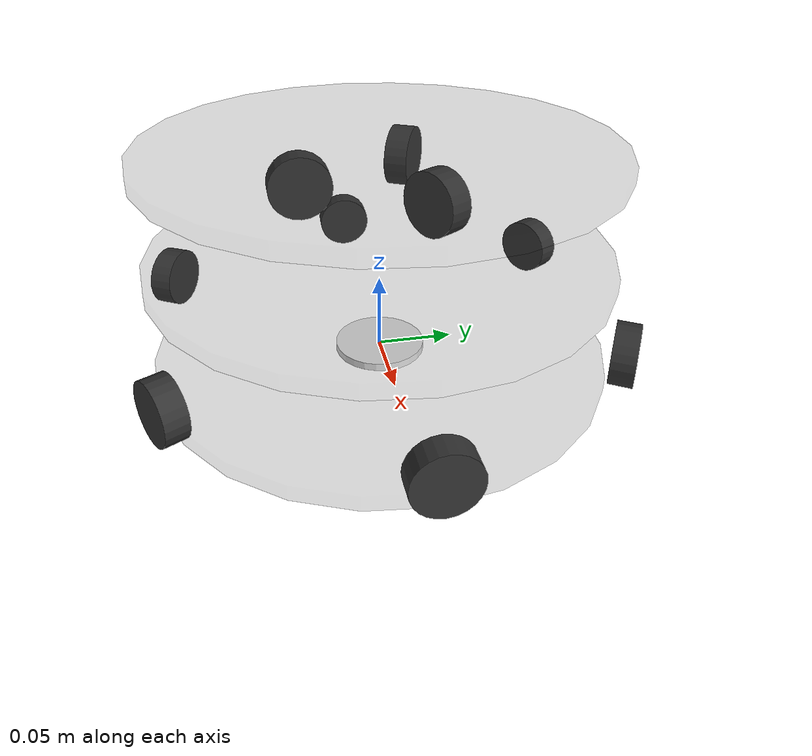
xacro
<?xml version="1.0"?>
<robot name="helix_description" xmlns:xacro="http://ros.org/wiki/xacro">

  <xacro:include filename="$(find helix_description)/urdf/helix.materials.xacro" />

  <xacro:include filename="$(find helix_description)/urdf/motor_head.xacro" />
  <xacro:include filename="$(find helix_description)/urdf/helix.ros2_control.xacro" />
  <xacro:include filename="$(find helix_description)/urdf/helix_arm.xacro"  />

  <link name="origin"/>

  <xacro:helix_ros2_control name="helix_ros2_control" />

  <xacro:motor_head parent="origin">
    <origin xyz="0 0 0" rpy="0 0 0" />
  </xacro:motor_head>

  <joint name="arm_to_origin" type="fixed">
    <origin xyz="0.0 0.0 0.0" rpy="3.1416 0 0"/>
    <parent link="origin"/>
    <child link="arm_base"/>
  </joint>

</robot>

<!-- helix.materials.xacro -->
<robot xmlns:xacro="http://www.ros.org/wiki/xacro" >

  <material name="white">
    <color rgba="1 1 1 1"/>
  </material>
  <material name="black">
    <color rgba="0.2 0.2 0.2 1.0"/>
  </material>
  <material name='clear'>
    <color rgba="0.2 0.2 0.2 0.2"/>
  </material>

</robot>

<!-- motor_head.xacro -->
<robot xmlns:xacro="http://ros.org/wiki/xacro">

<!-- URDF Representing the Helix head assembly containing the motors -->

<xacro:arg name="mesh_url" default="package://helix_description" />

<xacro:macro name="motor_head" params="parent *origin">

  <joint name="origin_to_base" type="fixed">
    <xacro:insert_block name="origin" />
    <parent link="${parent}" />
    <child link="base" />
    <axis xyz="0 0 1" />
  </joint>

  <!-- Base -->
  <link name="base">
    <visual>
      <origin xyz="0 0 0" rpy="0 0 0"/>
      <geometry>
        <cylinder length="0.01" radius="0.15"/>
      </geometry>
      <material name='clear'/>
    </visual>
    <visual>
      <origin xyz="0 0 0.07" rpy="0 0 0"/>
      <geometry>
        <cylinder length="0.01" radius="0.15"/>
      </geometry>
      <material name='clear'/>
    </visual>
     <visual>
      <origin xyz="0 0 0.14" rpy="0 0 0"/>
      <geometry>
        <cylinder length="0.01" radius="0.15"/>
      </geometry>
      <material name='clear'/>
    </visual>
  </link>

  <!-- Joint 0 -->
  <joint name="joint0" type="continuous">
    <parent link="base"/>
    <child link="link0"/>
    <origin xyz="-0.043 0.025 0.12" rpy="0 0 4.2"/>
    <axis xyz="1 0 0"/>
  </joint>

   <!-- Link 0 -->
  <link name="link0">
    <visual>
      <origin xyz="0 0 0" rpy="0 1.57 0"/>
      <geometry>
        <cylinder length="0.015" radius="0.02"/>
      </geometry>
      <material name="black"/>
    </visual>
  </link>

  <!-- Joint 1 -->
  <joint name="joint1" type="continuous">
    <parent link="base"/>
    <child link="link1"/>
    <origin xyz="0 -0.05 0.12" rpy="0 0 0"/>
    <axis xyz="1 0 0"/>
  </joint>

   <!-- Link 1 -->
  <link name="link1">
    <visual>
      <origin xyz="0 0 0" rpy="0 1.57 0"/>
      <geometry>
        <cylinder length="0.015" radius="0.02"/>
      </geometry>
      <material name="black"/>
    </visual>
  </link>

  <!-- Joint 2 -->
  <joint name="joint2" type="continuous">
    <parent link="base"/>
    <child link="link2"/>
    <origin xyz="0.043 0.025 0.12" rpy="0 0 2.1"/>
    <axis xyz="1 0 0"/>
    continuous
  </joint>

   <!-- Link 2 -->
  <link name="link2">
    <visual>
      <origin xyz="0 0 0" rpy="0 1.57 0"/>
      <geometry>
        <cylinder length="0.015" radius="0.02"/>
      </geometry>
      <material name="black"/>
    </visual>
  </link>

  <!-- Joint 3 -->
  <joint name="joint3" type="continuous">
    <parent link="base"/>
    <child link="link3"/>
    <origin xyz="0.16 0 0.025" rpy="0 0 0"/>
    <axis xyz="1 0 0"/>
  </joint>

   <!-- Link 3 -->
  <link name="link3">
    <visual>
      <origin xyz="0 0 0" rpy="0 1.57 0"/>
      <geometry>
        <cylinder length="0.015" radius="0.02"/>
      </geometry>
      <material name="black"/>
    </visual>
  </link>

  <!-- Joint 4 -->
  <joint name="joint4" type="continuous">
    <parent link="base"/>
    <child link="link4"/>
    <origin xyz="-0.08 0.138 0.025" rpy="0 0 2.1"/>
    <axis xyz="1 0 0"/>
  </joint>

   <!-- Link 4 -->
  <link name="link4">
    <visual>
      <origin xyz="0 0 0" rpy="0 1.57 0"/>
      <geometry>
        <cylinder length="0.015" radius="0.02"/>
      </geometry>
      <material name="black"/>
    </visual>
  </link>

  <!-- Joint 5 -->
  <joint name="joint5" type="continuous">
    <parent link="base"/>
    <child link="link5"/>
    <origin xyz="-0.08 -0.138 0.025" rpy="0 0 4.2"/>
    <axis xyz="1 0 0"/>
  </joint>

   <!-- Link 5 -->
  <link name="link5">
    <visual>
      <origin xyz="0 0 0" rpy="0 1.57 0"/>
      <geometry>
        <cylinder length="0.015" radius="0.02"/>
      </geometry>
      <material name="black"/>
    </visual>
  </link>

  <!-- Joint 6 -->
  <joint name="joint6" type="continuous">
    <parent link="base"/>
    <child link="link6"/>
    <origin xyz="0.08 -0.138 0.025" rpy="0 0 5.2"/>
    <axis xyz="1 0 0"/>
  </joint>

   <!-- Link 6 -->
  <link name="link6">
    <visual>
      <origin xyz="0 0 0" rpy="0 1.57 0"/>
      <geometry>
        <cylinder length="0.015" radius="0.02"/>
      </geometry>
      <material name="black"/>
    </visual>
  </link>

  <!-- Joint 7 -->
  <joint name="joint7" type="continuous">
    <parent link="base"/>
    <child link="link7"/>
    <origin xyz="0.08 0.138 0.025" rpy="0 0 1.0"/>
    <axis xyz="1 0 0"/>
  </joint>

   <!-- Link 7 -->
  <link name="link7">
    <visual>
      <origin xyz="0 0 0" rpy="0 1.57 0"/>
      <geometry>
        <cylinder length="0.015" radius="0.02"/>
      </geometry>
      <material name="black"/>
    </visual>
  </link>

  <!-- Joint 8 -->
  <joint name="joint8" type="continuous">
    <parent link="base"/>
    <child link="link8"/>
    <origin xyz="-0.16 0 0.025" rpy="0 0 3.1"/>
    <axis xyz="1 0 0"/>
  </joint>

   <!-- Link 8 -->
  <link name="link8">
    <visual>
      <origin xyz="0 0 0" rpy="0 1.57 0"/>
      <geometry>
        <cylinder length="0.015" radius="0.02"/>
      </geometry>
      <material name="black"/>
    </visual>
  </link>

</xacro:macro>

</robot>

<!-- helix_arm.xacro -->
<robot name="urdf_helix" xmlns:xacro="http://www.ros.org/wiki/xacro">

<!-- URDF Representing the Helix arm -->

<xacro:arg name="mesh_url" default="package://helix_description" />

<link name="arm_base">
  <visual>
    <origin xyz="0 0 0" rpy="0 0 0"/>
      <geometry>
        <cylinder length="0.005" radius="0.03"/>
      </geometry>
    <material name="white"/>
  </visual>
</link>

<!-- Links for visualisation using floating discs, their transforms can be set manually -->

<!-- First segment -->

<joint name="seg1_mid_joint_1" type="floating">
  <parent link="arm_base"/>
  <child link="seg1_mid_link_1"/>
</joint>

<link name="seg1_mid_link_1">
  <visual>
    <origin xyz="0 0 0" rpy="0 0 0"/>
      <geometry>
        <cylinder length="0.005" radius="0.03"/>
      </geometry>
    <material name="clear"/>
  </visual>
</link>

<joint name="seg1_mid_joint_2" type="floating">
  <parent link="arm_base"/>
  <child link="seg1_mid_link_2"/>
</joint>

<link name="seg1_mid_link_2">
  <visual>
    <origin xyz="0 0 0" rpy="0 0 0"/>
      <geometry>
        <cylinder length="0.005" radius="0.03"/>
      </geometry>
    <material name="clear"/>
  </visual>
</link>

<joint name="seg1_mid_joint_3" type="floating">
  <parent link="arm_base"/>
  <child link="seg1_mid_link_3"/>
</joint>

<link name="seg1_mid_link_3">
  <visual>
    <origin xyz="0 0 0" rpy="0 0 0"/>
      <geometry>
        <cylinder length="0.005" radius="0.03"/>
      </geometry>
    <material name="clear"/>
  </visual>
</link>

<joint name="seg1_end_joint" type="floating">
  <parent link="arm_base"/>
  <child link="seg1_end_link"/>
</joint>

<link name="seg1_end_link">
  <visual>
    <origin xyz="0 0 0" rpy="0 0 0"/>
      <geometry>
        <cylinder length="0.005" radius="0.03"/>
      </geometry>
    <material name="white"/>
  </visual>
</link>

<!-- Second segment -->

<joint name="seg2_mid_joint_1" type="floating">
  <parent link="arm_base"/>
  <child link="seg2_mid_link_1"/>
</joint>

<link name="seg2_mid_link_1">
  <visual>
    <origin xyz="0 0 0" rpy="0 0 0"/>
      <geometry>
        <cylinder length="0.005" radius="0.03"/>
      </geometry>
    <material name="clear"/>
  </visual>
</link>

<joint name="seg2_mid_joint_2" type="floating">
  <parent link="arm_base"/>
  <child link="seg2_mid_link_2"/>
</joint>

<link name="seg2_mid_link_2">
  <visual>
    <origin xyz="0 0 0" rpy="0 0 0"/>
      <geometry>
        <cylinder length="0.005" radius="0.03"/>
      </geometry>
    <material name="clear"/>
  </visual>
</link>

<joint name="seg2_mid_joint_3" type="floating">
  <parent link="arm_base"/>
  <child link="seg2_mid_link_3"/>
</joint>

<link name="seg2_mid_link_3">
  <visual>
    <origin xyz="0 0 0" rpy="0 0 0"/>
      <geometry>
        <cylinder length="0.005" radius="0.03"/>
      </geometry>
    <material name="clear"/>
  </visual>
</link>

<joint name="seg2_mid_joint_4" type="floating">
  <parent link="arm_base"/>
  <child link="seg2_mid_link_4"/>
</joint>

<link name="seg2_mid_link_4">
  <visual>
    <origin xyz="0 0 0" rpy="0 0 0"/>
      <geometry>
        <cylinder length="0.005" radius="0.03"/>
      </geometry>
    <material name="clear"/>
  </visual>
</link>

<joint name="seg2_mid_joint_5" type="floating">
  <parent link="arm_base"/>
  <child link="seg2_mid_link_5"/>
</joint>

<link name="seg2_mid_link_5">
  <visual>
    <origin xyz="0 0 0" rpy="0 0 0"/>
      <geometry>
        <cylinder length="0.005" radius="0.03"/>
      </geometry>
    <material name="clear"/>
  </visual>
</link>

<joint name="seg2_mid_joint_6" type="floating">
  <parent link="arm_base"/>
  <child link="seg2_mid_link_6"/>
</joint>

<link name="seg2_mid_link_6">
  <visual>
    <origin xyz="0 0 0" rpy="0 0 0"/>
      <geometry>
        <cylinder length="0.005" radius="0.03"/>
      </geometry>
    <material name="clear"/>
  </visual>
</link>

<joint name="seg2_mid_joint_7" type="floating">
  <parent link="arm_base"/>
  <child link="seg2_mid_link_7"/>
</joint>

<link name="seg2_mid_link_7">
  <visual>
    <origin xyz="0 0 0" rpy="0 0 0"/>
      <geometry>
        <cylinder length="0.005" radius="0.03"/>
      </geometry>
    <material name="clear"/>
  </visual>
</link>

<joint name="seg2_end_joint" type="floating">
  <parent link="arm_base"/>
  <child link="seg2_end_link"/>
</joint>

<link name="seg2_end_link">
  <visual>
    <origin xyz="0 0 0" rpy="0 0 0"/>
      <geometry>
        <cylinder length="0.005" radius="0.03"/>
      </geometry>
    <material name="white"/>
  </visual>
</link>

<!-- Third segment -->

<joint name="seg3_mid_joint_1" type="floating">
  <parent link="arm_base"/>
  <child link="seg3_mid_link_1"/>
</joint>

<link name="seg3_mid_link_1">
  <visual>
    <origin xyz="0 0 0" rpy="0 0 0"/>
      <geometry>
        <cylinder length="0.005" radius="0.03"/>
      </geometry>
    <material name="clear"/>
  </visual>
</link>

<joint name="seg3_mid_joint_2" type="floating">
  <parent link="arm_base"/>
  <child link="seg3_mid_link_2"/>
</joint>

<link name="seg3_mid_link_2">
  <visual>
    <origin xyz="0 0 0" rpy="0 0 0"/>
      <geometry>
        <cylinder length="0.005" radius="0.03"/>
      </geometry>
    <material name="clear"/>
  </visual>
</link>

<joint name="seg3_mid_joint_3" type="floating">
  <parent link="arm_base"/>
  <child link="seg3_mid_link_3"/>
</joint>

<link name="seg3_mid_link_3">
  <visual>
    <origin xyz="0 0 0" rpy="0 0 0"/>
      <geometry>
        <cylinder length="0.005" radius="0.03"/>
      </geometry>
    <material name="clear"/>
  </visual>
</link>

<joint name="seg3_mid_joint_4" type="floating">
  <parent link="arm_base"/>
  <child link="seg3_mid_link_4"/>
</joint>

<link name="seg3_mid_link_4">
  <visual>
    <origin xyz="0 0 0" rpy="0 0 0"/>
      <geometry>
        <cylinder length="0.005" radius="0.03"/>
      </geometry>
    <material name="clear"/>
  </visual>
</link>

<joint name="seg3_mid_joint_5" type="floating">
  <parent link="arm_base"/>
  <child link="seg3_mid_link_5"/>
</joint>

<link name="seg3_mid_link_5">
  <visual>
    <origin xyz="0 0 0" rpy="0 0 0"/>
      <geometry>
        <cylinder length="0.005" radius="0.03"/>
      </geometry>
    <material name="clear"/>
  </visual>
</link>

<joint name="seg3_mid_joint_6" type="floating">
  <parent link="arm_base"/>
  <child link="seg3_mid_link_6"/>
</joint>

<link name="seg3_mid_link_6">
  <visual>
    <origin xyz="0 0 0" rpy="0 0 0"/>
      <geometry>
        <cylinder length="0.005" radius="0.03"/>
      </geometry>
    <material name="clear"/>
  </visual>
</link>

<joint name="seg3_mid_joint_7" type="floating">
  <parent link="arm_base"/>
  <child link="seg3_mid_link_7"/>
</joint>

<link name="seg3_mid_link_7">
  <visual>
    <origin xyz="0 0 0" rpy="0 0 0"/>
      <geometry>
        <cylinder length="0.005" radius="0.03"/>
      </geometry>
    <material name="clear"/>
  </visual>
</link>

<joint name="seg3_end_joint" type="floating">
  <parent link="arm_base"/>
  <child link="seg3_end_link"/>
</joint>

<link name="seg3_end_link">
  <visual>
    <origin xyz="0 0 0" rpy="0 0 0"/>
      <geometry>
        <cylinder length="0.005" radius="0.03"/>
      </geometry>
    <material name="white"/>
  </visual>
</link>

</robot>
